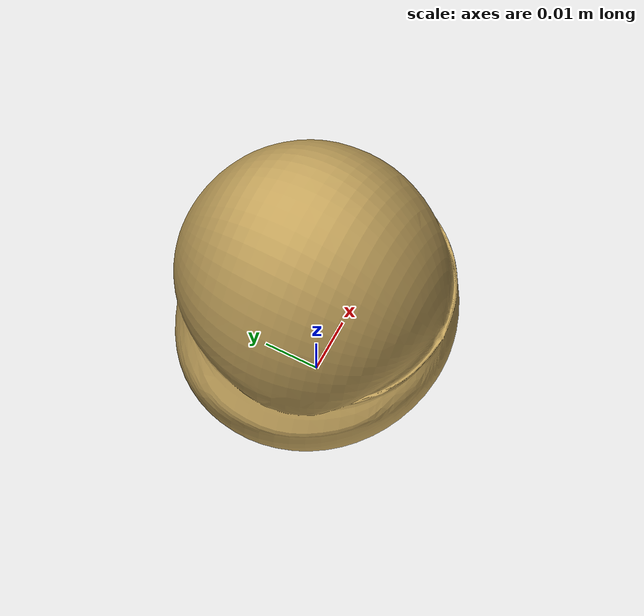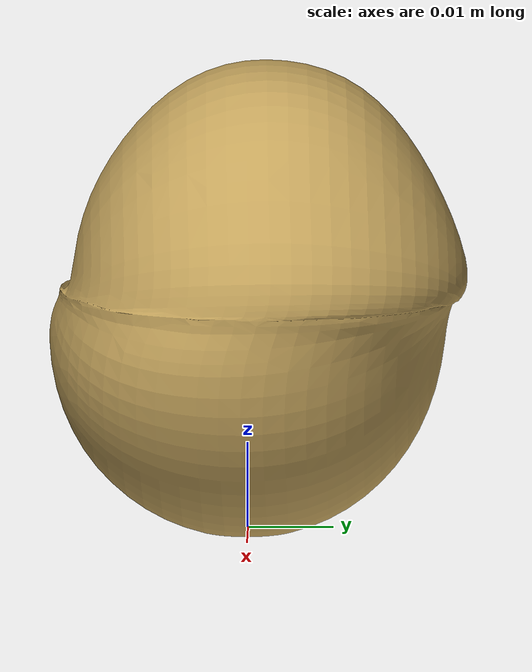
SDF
<?xml version='1.0'?>
<sdf version='1.6'>
  <model name='Erliao3_urdf'>
    <link name='base_link'>
      <pose frame=''>0 0 0 0 -0 0</pose>
      <inertial>
        <pose frame=''>0.000882 0.001023 0.02633 0 -0 0</pose>
        <mass>0.065659</mass>
        <inertia>
          <ixx>1.7355e-05</ixx>
          <ixy>-1.3019e-08</ixy>
          <ixz>-3.7384e-07</ixz>
          <iyy>1.8034e-05</iyy>
          <iyz>-7.7407e-07</iyz>
          <izz>1.4945e-05</izz>
        </inertia>
      </inertial>
      <self_collide>0</self_collide>
      <enable_wind>0</enable_wind>
      <kinematic>0</kinematic>
      <visual name='base_link_visual'>
        <pose frame=''>0 0 0 0 -0 0</pose>
        <geometry>
          <mesh>
            <scale>1 1 1</scale>
            <uri>model://Erliao3_urdf/meshes/base_link.STL</uri>
          </mesh>
        </geometry>
        <material>
          <ambient>0.7608 0.6353 0.3569 1</ambient>
          <diffuse>0.7608 0.6353 0.3569 1</diffuse>
          <specular>0 0 0 1</specular>
          <emissive>0 0 0 1</emissive>
        </material>
        <transparency>0</transparency>
        <cast_shadows>1</cast_shadows>
      </visual>
      <collision name='base_link_collision'>
        <laser_retro>0</laser_retro>
        <max_contacts>10</max_contacts>
        <pose frame=''>0 0 0 0 -0 0</pose>
        <geometry>
          <mesh>
            <uri>model://Erliao3_urdf/meshes/base_link.STL</uri>
            <scale>0.8 0.8 0.8</scale>
          </mesh>
        </geometry>
        <surface>
          <friction>
            <ode>
              <mu>1</mu>
              <mu2>1</mu2>
              <fdir1>0 0 0</fdir1>
              <slip1>0</slip1>
              <slip2>0</slip2>
            </ode>
            <torsional>
              <coefficient>1</coefficient>
              <patch_radius>0</patch_radius>
              <surface_radius>0</surface_radius>
              <use_patch_radius>1</use_patch_radius>
              <ode>
                <slip>0</slip>
              </ode>
            </torsional>
          </friction>
          <bounce>
            <restitution_coefficient>0</restitution_coefficient>
            <threshold>1e+06</threshold>
          </bounce>
          <contact>
            <collide_without_contact>0</collide_without_contact>
            <collide_without_contact_bitmask>1</collide_without_contact_bitmask>
            <collide_bitmask>1</collide_bitmask>
            <ode>
              <soft_cfm>0</soft_cfm>
              <soft_erp>0.2</soft_erp>
              <kp>1e+13</kp>
              <kd>1</kd>
              <max_vel>0.01</max_vel>
              <min_depth>0</min_depth>
            </ode>
            <bullet>
              <split_impulse>1</split_impulse>
              <split_impulse_penetration_threshold>-0.01</split_impulse_penetration_threshold>
              <soft_cfm>0</soft_cfm>
              <soft_erp>0.2</soft_erp>
              <kp>1e+13</kp>
              <kd>1</kd>
            </bullet>
          </contact>
        </surface>
      </collision>
    </link>
    <static>0</static>
    <allow_auto_disable>1</allow_auto_disable>
  </model>
</sdf>
